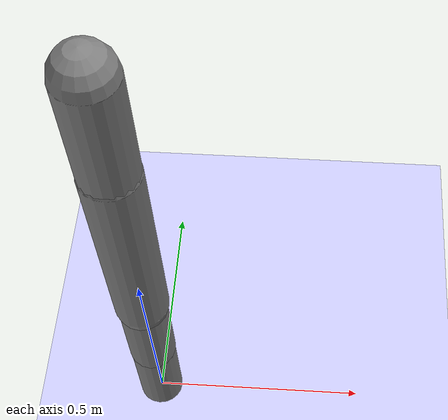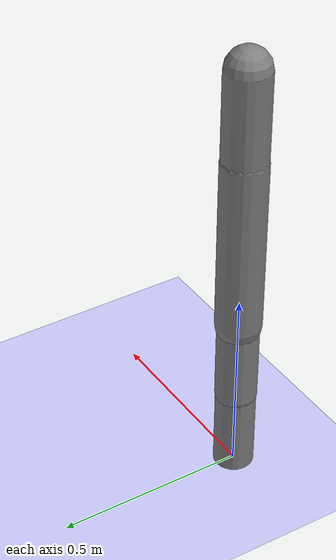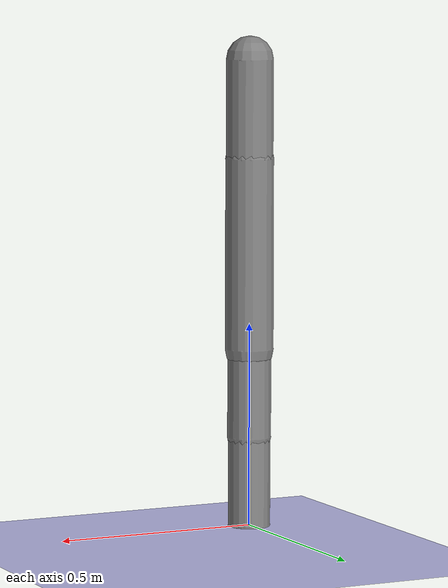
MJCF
<?xml version='1.0' encoding='UTF-8'?>
<mujoco model="robot_model">
  <worldbody>
    <light name="light" pos="0 -3 10" dir="0 0.5 -1" diffuse=".8 .8 .8" specular="0.1 0.1 0.1"/>
    <geom name="floor" type="plane" size="10.0 10.0 0.1" pos="0 0 0" rgba="0.8 0.8 1 1"/>
    <body name="limb0" pos="0 0 0">
      <geom type="capsule" fromto="0 0 0 0 0 0.2902629649113912" size="0.05227636530917177" density="762.8191112167481"/>
      <site type="sphere" size="0.01" name="limb0_site0" pos="0 0 0.2194209913894763"/>
      <site type="sphere" size="0.01" name="limb0_site1" pos="0 0 0.05045588193191507"/>
      <freejoint name="limb0_root"/>
      <body name="limb1" pos="0 0 0.2194209913894763">
        <geom type="capsule" fromto="0 0 0 0 0 0.3600789675341075" size="0.05407429494422454" density="619.3655655626594"/>
        <site type="sphere" size="0.01" name="limb1_site0" pos="0 0 0.14348370626259008"/>
        <body name="limb2" pos="0 0 0.14348370626259008">
          <geom type="capsule" fromto="0 0 0 0 0 0.10581665254440775" size="0.05348785395614184" density="974.5770120745345"/>
          <site type="sphere" size="0.01" name="limb2_site0" pos="0 0 0.09083760987558298"/>
          <body name="limb3" pos="0 0 0.09083760987558298">
            <geom type="capsule" fromto="0 0 0 0 0 0.3246346816300574" size="0.027985800535247497" density="877.8764988614424"/>
            <site type="sphere" size="0.01" name="limb3_site0" pos="0 0 0.30592291138675143"/>
            <body name="limb4" pos="0 0 0.30592291138675143">
              <geom type="capsule" fromto="0 0 0 0 0 0.38664313349290746" size="0.05825338637690475" density="1129.6842087872121"/>
              <joint name="joint_limb3_limb4_0" type="hinge" axis="0 0 1" range="-32.23675465955068 32.23675465955068" damping="5.0"/>
            </body>
            <joint name="joint_limb2_limb3_0" type="hinge" axis="1 0 0" range="-102.98912811609488 102.98912811609488" damping="5.0"/>
          </body>
          <joint name="joint_limb1_limb2_0" type="hinge" axis="1 0 0" range="-39.88258003655788 39.88258003655788" damping="5.0"/>
        </body>
        <joint name="joint_limb0_limb1_0" type="hinge" axis="0 1 0" range="-118.27639451941653 118.27639451941653" damping="5.0"/>
      </body>
      <body name="limb5" pos="0 0 0.05045588193191507">
        <geom type="capsule" fromto="0 0 0 0 0 0.20848267310478638" size="0.044649670011882046" density="708.121859381018"/>
        <site type="sphere" size="0.01" name="limb5_site0" pos="0 0 0.09694283771372672"/>
        <site type="sphere" size="0.01" name="limb5_site1" pos="0 0 0.03808324873440217"/>
        <site type="sphere" size="0.01" name="limb5_site2" pos="0 0 0.15308942677993284"/>
        <body name="limb6" pos="0 0 0.09694283771372672">
          <geom type="capsule" fromto="0 0 0 0 0 0.2580051719990348" size="0.04067339747056138" density="1032.0122543846398"/>
          <joint name="joint_limb5_limb6_0" type="hinge" axis="1 0 0" range="-93.08090491481728 93.08090491481728" damping="5.0"/>
        </body>
        <body name="limb7" pos="0 0 0.03808324873440217">
          <geom type="capsule" fromto="0 0 0 0 0 0.49506834786402915" size="0.03678532303791788" density="732.350866634508"/>
          <site type="sphere" size="0.01" name="limb7_site0" pos="0 0 0.48864896668293684"/>
          <body name="limb8" pos="0 0 0.48864896668293684">
            <geom type="capsule" fromto="0 0 0 0 0 0.17987090326120395" size="0.045840603195653064" density="427.52554854241964"/>
            <site type="sphere" size="0.01" name="limb8_site0" pos="0 0 0.13622738925839864"/>
            <body name="limb9" pos="0 0 0.13622738925839864">
              <geom type="capsule" fromto="0 0 0 0 0 0.19891389615533042" size="0.030325208070064356" density="1018.0930803065299"/>
              <joint name="joint_limb8_limb9_0" type="hinge" axis="0 0 1" range="-104.59573439320407 104.59573439320407" damping="5.0"/>
            </body>
            <joint name="joint_limb7_limb8_0" type="hinge" axis="0 1 0" range="-101.73901430779064 101.73901430779064" damping="5.0"/>
          </body>
          <joint name="joint_limb5_limb7_0" type="hinge" axis="0 0 1" range="-98.208106043741 98.208106043741" damping="5.0"/>
        </body>
        <body name="limb10" pos="0 0 0.15308942677993284">
          <geom type="capsule" fromto="0 0 0 0 0 0.2879295497092825" size="0.04990344700900342" density="660.7067265019084"/>
          <site type="sphere" size="0.01" name="limb10_site0" pos="0 0 0.23449394497914045"/>
          <body name="limb11" pos="0 0 0.23449394497914045">
            <geom type="capsule" fromto="0 0 0 0 0 0.4676759956951593" size="0.05966738873335552" density="631.8729198528299"/>
            <joint name="joint_limb10_limb11_0" type="hinge" axis="1 0 0" range="-111.25459074536548 111.25459074536548" damping="5.0"/>
          </body>
          <joint name="joint_limb5_limb10_0" type="hinge" axis="1 0 0" range="-52.24607575631726 52.24607575631726" damping="5.0"/>
        </body>
        <joint name="joint_limb0_limb5_0" type="hinge" axis="0 0 1" range="-96.21716630603876 96.21716630603876" damping="5.0"/>
      </body>
    </body>
  </worldbody>
  <actuator>
    <position name="position_actuator_joint_limb0_limb1_0" joint="joint_limb0_limb1_0" gear="1.143090706227208" inheritrange="1" kp="10.0"/>
    <position name="position_actuator_joint_limb1_limb2_0" joint="joint_limb1_limb2_0" gear="1.8942672705904835" inheritrange="1" kp="10.0"/>
    <position name="position_actuator_joint_limb2_limb3_0" joint="joint_limb2_limb3_0" gear="1.285844846340357" inheritrange="1" kp="10.0"/>
    <position name="position_actuator_joint_limb3_limb4_0" joint="joint_limb3_limb4_0" gear="0.6866428973515241" inheritrange="1" kp="10.0"/>
    <position name="position_actuator_joint_limb0_limb5_0" joint="joint_limb0_limb5_0" gear="1.7817465554683207" inheritrange="1" kp="10.0"/>
    <position name="position_actuator_joint_limb5_limb6_0" joint="joint_limb5_limb6_0" gear="1.3491558148691103" inheritrange="1" kp="10.0"/>
    <position name="position_actuator_joint_limb5_limb7_0" joint="joint_limb5_limb7_0" gear="0.9075785035297382" inheritrange="1" kp="10.0"/>
    <position name="position_actuator_joint_limb7_limb8_0" joint="joint_limb7_limb8_0" gear="0.6855578824392156" inheritrange="1" kp="10.0"/>
    <position name="position_actuator_joint_limb8_limb9_0" joint="joint_limb8_limb9_0" gear="0.7049780118299882" inheritrange="1" kp="10.0"/>
    <position name="position_actuator_joint_limb5_limb10_0" joint="joint_limb5_limb10_0" gear="0.732217334990693" inheritrange="1" kp="10.0"/>
    <position name="position_actuator_joint_limb10_limb11_0" joint="joint_limb10_limb11_0" gear="1.6619783528975058" inheritrange="1" kp="10.0"/>
  </actuator>
</mujoco>
